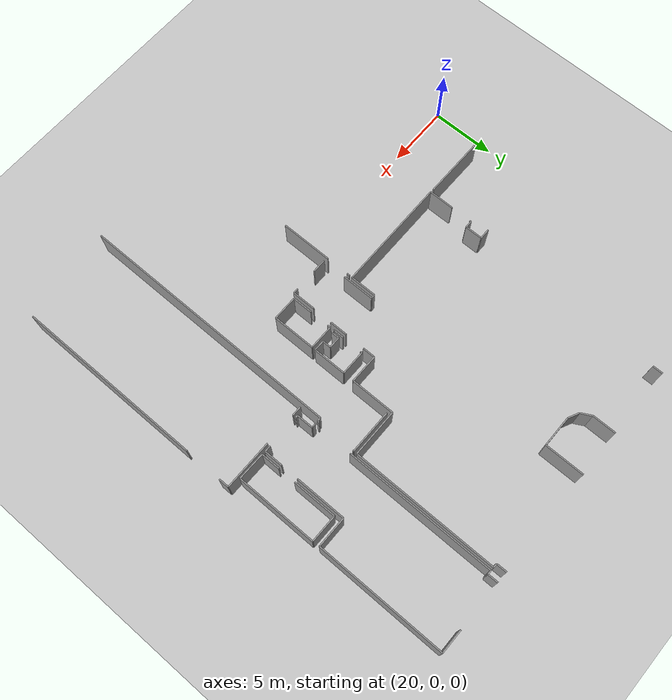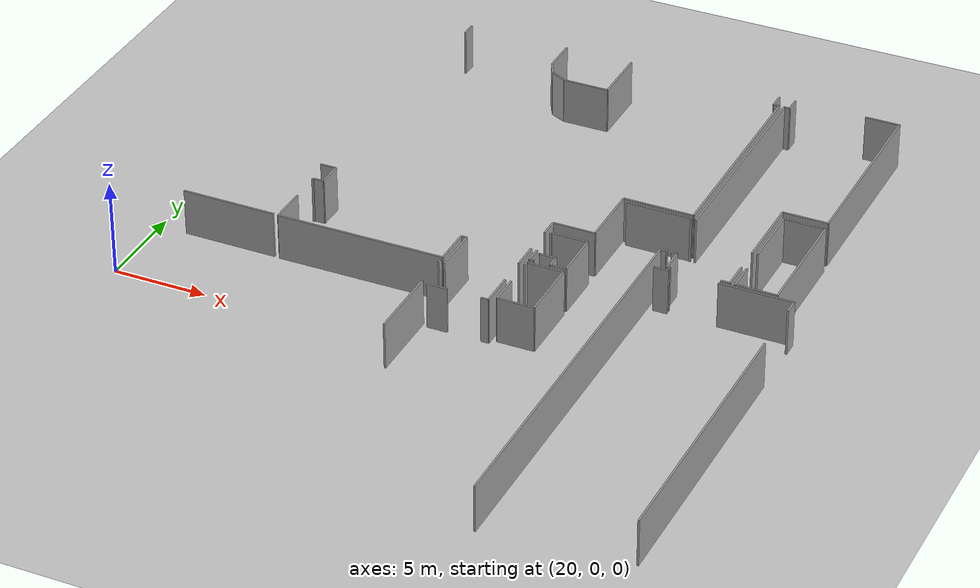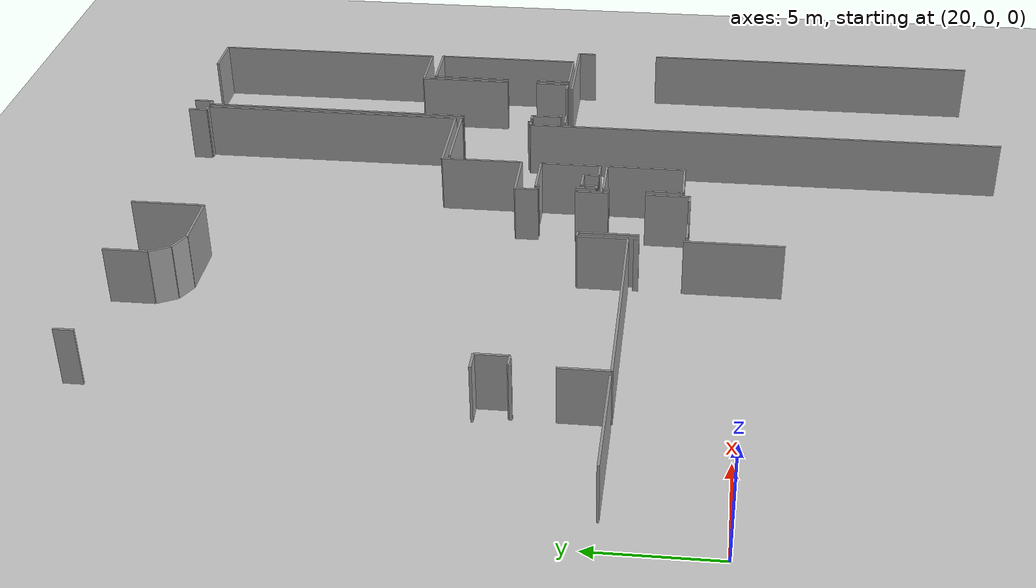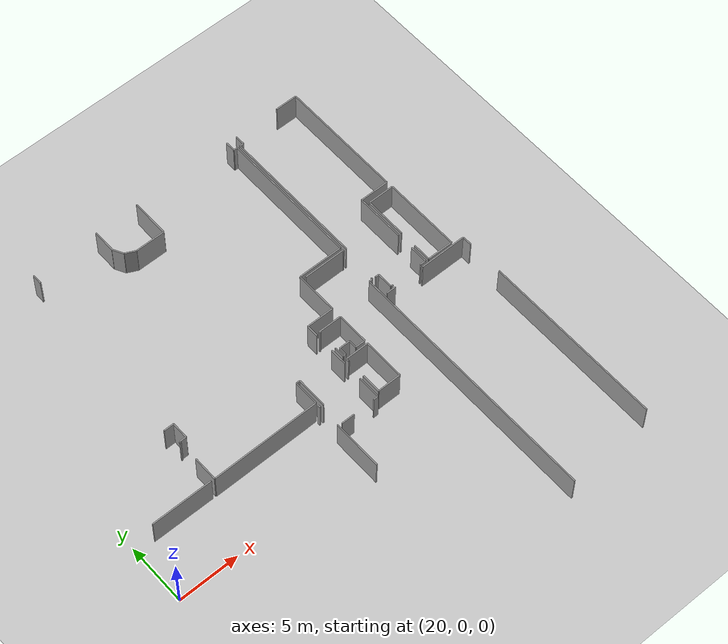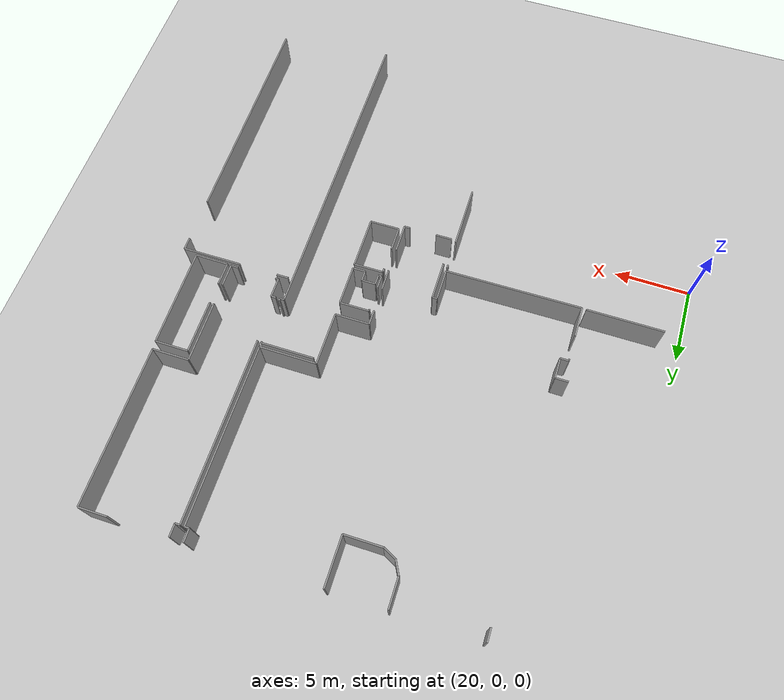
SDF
<sdf version="1.6">
 <world name="default">
  <model name="ground_plane">
   <static>1</static>
   <link name="link">
    <collision name="collision">
     <geometry><plane><normal>0 0 1</normal><size>100 100</size></plane></geometry>
     <surface><friction><ode><mu>100</mu><mu2>50</mu2></ode></friction></surface>
    </collision>
    <visual name="visual">
     <cast_shadows>0</cast_shadows>
     <geometry><plane><normal>0 0 1</normal><size>100 100</size></plane></geometry>
     <material>
      <script><uri>file://media/materials/scripts/gazebo.material</uri><name>Gazebo/Grey</name></script>
     </material>
    </visual>
   </link>
  </model>
  <model name="50045366">
   <static>1</static>
   <link name="Wall_236">
    <collision name="Wall_236_Collision">
     <geometry><box><size>3.45746910366 0.1 2.5</size></box></geometry>
     <pose>1.72873455183 0 1.25 0 0 0</pose>
    </collision>
    <visual name="Wall_236_Visual">
     <pose>1.72873455183 0 1.25 0 0 0</pose>
     <geometry><box><size>3.45746910366 0.1 2.5</size></box></geometry>
     <material>
      <script><uri>file://media/materials/scripts/gazebo.material</uri><name>Gazebo/Grey</name></script>
      <ambient>1 1 1 1</ambient>
     </material>
    </visual>
    <pose>95.8589373944 -12.6361915891 0 0 0 0.0</pose>
   </link>
   <link name="Wall_237">
    <collision name="Wall_237_Collision">
     <geometry><box><size>0.0842107937153 0.1 2.5</size></box></geometry>
     <pose>0.0421053968577 0 1.25 0 0 0</pose>
    </collision>
    <visual name="Wall_237_Visual">
     <pose>0.0421053968577 0 1.25 0 0 0</pose>
     <geometry><box><size>0.0842107937153 0.1 2.5</size></box></geometry>
     <material>
      <script><uri>file://media/materials/scripts/gazebo.material</uri><name>Gazebo/Grey</name></script>
      <ambient>1 1 1 1</ambient>
     </material>
    </visual>
    <pose>99.3164064981 -12.6361915891 0 0 0 -1.57079632679</pose>
   </link>
   <link name="Wall_238">
    <collision name="Wall_238_Collision">
     <geometry><box><size>0.143526692154 0.1 2.5</size></box></geometry>
     <pose>0.0717633460772 0 1.25 0 0 0</pose>
    </collision>
    <visual name="Wall_238_Visual">
     <pose>0.0717633460772 0 1.25 0 0 0</pose>
     <geometry><box><size>0.143526692154 0.1 2.5</size></box></geometry>
     <material>
      <script><uri>file://media/materials/scripts/gazebo.material</uri><name>Gazebo/Grey</name></script>
      <ambient>1 1 1 1</ambient>
     </material>
    </visual>
    <pose>99.3164064981 -15.6850541718 0 0 0 -1.57079632679</pose>
   </link>
   <link name="Wall_239">
    <collision name="Wall_239_Collision">
     <geometry><box><size>0.296325462651 0.1 2.5</size></box></geometry>
     <pose>0.148162731326 0 1.25 0 0 0</pose>
    </collision>
    <visual name="Wall_239_Visual">
     <pose>0.148162731326 0 1.25 0 0 0</pose>
     <geometry><box><size>0.296325462651 0.1 2.5</size></box></geometry>
     <material>
      <script><uri>file://media/materials/scripts/gazebo.material</uri><name>Gazebo/Grey</name></script>
      <ambient>1 1 1 1</ambient>
     </material>
    </visual>
    <pose>99.3164064981 -15.828580864 0 0 0 3.14159265359</pose>
   </link>
   <link name="Wall_240">
    <collision name="Wall_240_Collision">
     <geometry><box><size>20.916792623 0.1 2.5</size></box></geometry>
     <pose>10.4583963115 0 1.25 0 0 0</pose>
    </collision>
    <visual name="Wall_240_Visual">
     <pose>10.4583963115 0 1.25 0 0 0</pose>
     <geometry><box><size>20.916792623 0.1 2.5</size></box></geometry>
     <material>
      <script><uri>file://media/materials/scripts/gazebo.material</uri><name>Gazebo/Grey</name></script>
      <ambient>1 1 1 1</ambient>
     </material>
    </visual>
    <pose>99.0200810354 -15.828580864 0 0 0 -1.57079632679</pose>
   </link>
   <link name="Wall_377">
    <collision name="Wall_377_Collision">
     <geometry><box><size>1.28831083055 0.1 2.5</size></box></geometry>
     <pose>0.644155415275 0 1.25 0 0 0</pose>
    </collision>
    <visual name="Wall_377_Visual">
     <pose>0.644155415275 0 1.25 0 0 0</pose>
     <geometry><box><size>1.28831083055 0.1 2.5</size></box></geometry>
     <material>
      <script><uri>file://media/materials/scripts/gazebo.material</uri><name>Gazebo/Grey</name></script>
      <ambient>1 1 1 1</ambient>
     </material>
    </visual>
    <pose>99.8935616212 -17.1092708082 0 0 0 1.57079632679</pose>
   </link>
   <link name="Wall_378">
    <collision name="Wall_378_Collision">
     <geometry><box><size>0.308264851202 0.1 2.5</size></box></geometry>
     <pose>0.154132425601 0 1.25 0 0 0</pose>
    </collision>
    <visual name="Wall_378_Visual">
     <pose>0.154132425601 0 1.25 0 0 0</pose>
     <geometry><box><size>0.308264851202 0.1 2.5</size></box></geometry>
     <material>
      <script><uri>file://media/materials/scripts/gazebo.material</uri><name>Gazebo/Grey</name></script>
      <ambient>1 1 1 1</ambient>
     </material>
    </visual>
    <pose>99.8935616212 -15.8209599776 0 0 0 3.14159265359</pose>
   </link>
   <link name="Wall_379">
    <collision name="Wall_379_Collision">
     <geometry><box><size>11.8404440436 0.1 2.5</size></box></geometry>
     <pose>5.92022202182 0 1.25 0 0 0</pose>
    </collision>
    <visual name="Wall_379_Visual">
     <pose>5.92022202182 0 1.25 0 0 0</pose>
     <geometry><box><size>11.8404440436 0.1 2.5</size></box></geometry>
     <material>
      <script><uri>file://media/materials/scripts/gazebo.material</uri><name>Gazebo/Grey</name></script>
      <ambient>1 1 1 1</ambient>
     </material>
    </visual>
    <pose>99.58529677 -12.7140516442 0 0 0 1.57079632679</pose>
   </link>
   <link name="Wall_380">
    <collision name="Wall_380_Collision">
     <geometry><box><size>0.308264851202 0.1 2.5</size></box></geometry>
     <pose>0.154132425601 0 1.25 0 0 0</pose>
    </collision>
    <visual name="Wall_380_Visual">
     <pose>0.154132425601 0 1.25 0 0 0</pose>
     <geometry><box><size>0.308264851202 0.1 2.5</size></box></geometry>
     <material>
      <script><uri>file://media/materials/scripts/gazebo.material</uri><name>Gazebo/Grey</name></script>
      <ambient>1 1 1 1</ambient>
     </material>
    </visual>
    <pose>99.58529677 -0.873607600564 0 0 0 0.0</pose>
   </link>
   <link name="Wall_381">
    <collision name="Wall_381_Collision">
     <geometry><box><size>0.808194993078 0.1 2.5</size></box></geometry>
     <pose>0.404097496539 0 1.25 0 0 0</pose>
    </collision>
    <visual name="Wall_381_Visual">
     <pose>0.404097496539 0 1.25 0 0 0</pose>
     <geometry><box><size>0.808194993078 0.1 2.5</size></box></geometry>
     <material>
      <script><uri>file://media/materials/scripts/gazebo.material</uri><name>Gazebo/Grey</name></script>
      <ambient>1 1 1 1</ambient>
     </material>
    </visual>
    <pose>99.8935616212 -0.873607600564 0 0 0 1.57079632679</pose>
   </link>
   <link name="Wall_382">
    <collision name="Wall_382_Collision">
     <geometry><box><size>1.83536345277 0.1 2.5</size></box></geometry>
     <pose>0.917681726385 0 1.25 0 0 0</pose>
    </collision>
    <visual name="Wall_382_Visual">
     <pose>0.917681726385 0 1.25 0 0 0</pose>
     <geometry><box><size>1.83536345277 0.1 2.5</size></box></geometry>
     <material>
      <script><uri>file://media/materials/scripts/gazebo.material</uri><name>Gazebo/Grey</name></script>
      <ambient>1 1 1 1</ambient>
     </material>
    </visual>
    <pose>103.724327139 -0.0654126074863 0 0 0 0.0</pose>
   </link>
   <link name="Wall_383">
    <collision name="Wall_383_Collision">
     <geometry><box><size>10.1787097839 0.1 2.5</size></box></geometry>
     <pose>5.08935489197 0 1.25 0 0 0</pose>
    </collision>
    <visual name="Wall_383_Visual">
     <pose>5.08935489197 0 1.25 0 0 0</pose>
     <geometry><box><size>10.1787097839 0.1 2.5</size></box></geometry>
     <material>
      <script><uri>file://media/materials/scripts/gazebo.material</uri><name>Gazebo/Grey</name></script>
      <ambient>1 1 1 1</ambient>
     </material>
    </visual>
    <pose>105.559690592 -0.0654126074863 0 0 0 -1.57079632679</pose>
   </link>
   <link name="Wall_384">
    <collision name="Wall_384_Collision">
     <geometry><box><size>2.39537158171 0.1 2.5</size></box></geometry>
     <pose>1.19768579086 0 1.25 0 0 0</pose>
    </collision>
    <visual name="Wall_384_Visual">
     <pose>1.19768579086 0 1.25 0 0 0</pose>
     <geometry><box><size>2.39537158171 0.1 2.5</size></box></geometry>
     <material>
      <script><uri>file://media/materials/scripts/gazebo.material</uri><name>Gazebo/Grey</name></script>
      <ambient>1 1 1 1</ambient>
     </material>
    </visual>
    <pose>105.559690592 -10.2441223914 0 0 0 3.14159265359</pose>
   </link>
   <link name="Wall_385">
    <collision name="Wall_385_Collision">
     <geometry><box><size>4.01404783376 0.1 2.5</size></box></geometry>
     <pose>2.00702391688 0 1.25 0 0 0</pose>
    </collision>
    <visual name="Wall_385_Visual">
     <pose>2.00702391688 0 1.25 0 0 0</pose>
     <geometry><box><size>4.01404783376 0.1 2.5</size></box></geometry>
     <material>
      <script><uri>file://media/materials/scripts/gazebo.material</uri><name>Gazebo/Grey</name></script>
      <ambient>1 1 1 1</ambient>
     </material>
    </visual>
    <pose>103.16431901 -10.2441223914 0 0 0 -1.57079632679</pose>
   </link>
   <link name="Wall_386">
    <collision name="Wall_386_Collision">
     <geometry><box><size>1.46981493948 0.1 2.5</size></box></geometry>
     <pose>0.734907469739 0 1.25 0 0 0</pose>
    </collision>
    <visual name="Wall_386_Visual">
     <pose>0.734907469739 0 1.25 0 0 0</pose>
     <geometry><box><size>1.46981493948 0.1 2.5</size></box></geometry>
     <material>
      <script><uri>file://media/materials/scripts/gazebo.material</uri><name>Gazebo/Grey</name></script>
      <ambient>1 1 1 1</ambient>
     </material>
    </visual>
    <pose>103.16431901 -15.636534529 0 0 0 -1.57079632679</pose>
   </link>
   <link name="Wall_387">
    <collision name="Wall_387_Collision">
     <geometry><box><size>0.489133886271 0.1 2.5</size></box></geometry>
     <pose>0.244566943135 0 1.25 0 0 0</pose>
    </collision>
    <visual name="Wall_387_Visual">
     <pose>0.244566943135 0 1.25 0 0 0</pose>
     <geometry><box><size>0.489133886271 0.1 2.5</size></box></geometry>
     <material>
      <script><uri>file://media/materials/scripts/gazebo.material</uri><name>Gazebo/Grey</name></script>
      <ambient>1 1 1 1</ambient>
     </material>
    </visual>
    <pose>103.16431901 -17.1063494684 0 0 0 3.14159265359</pose>
   </link>
   <link name="Wall_388">
    <collision name="Wall_388_Collision">
     <geometry><box><size>0.199561590108 0.1 2.5</size></box></geometry>
     <pose>0.0997807950539 0 1.25 0 0 0</pose>
    </collision>
    <visual name="Wall_388_Visual">
     <pose>0.0997807950539 0 1.25 0 0 0</pose>
     <geometry><box><size>0.199561590108 0.1 2.5</size></box></geometry>
     <material>
      <script><uri>file://media/materials/scripts/gazebo.material</uri><name>Gazebo/Grey</name></script>
      <ambient>1 1 1 1</ambient>
     </material>
    </visual>
    <pose>100.093101828 -17.1063494684 0 0 0 -3.126953343</pose>
   </link>
   <link name="Wall_389">
    <collision name="Wall_389_Collision">
     <geometry><box><size>1.49102640637 0.1 2.5</size></box></geometry>
     <pose>0.745513203186 0 1.25 0 0 0</pose>
    </collision>
    <visual name="Wall_389_Visual">
     <pose>0.745513203186 0 1.25 0 0 0</pose>
     <geometry><box><size>1.49102640637 0.1 2.5</size></box></geometry>
     <material>
      <script><uri>file://media/materials/scripts/gazebo.material</uri><name>Gazebo/Grey</name></script>
      <ambient>1 1 1 1</ambient>
     </material>
    </visual>
    <pose>103.438543903 -17.1318794376 0 0 0 1.57079632679</pose>
   </link>
   <link name="Wall_390">
    <collision name="Wall_390_Collision">
     <geometry><box><size>3.46750327063 0.1 2.5</size></box></geometry>
     <pose>1.73375163532 0 1.25 0 0 0</pose>
    </collision>
    <visual name="Wall_390_Visual">
     <pose>1.73375163532 0 1.25 0 0 0</pose>
     <geometry><box><size>3.46750327063 0.1 2.5</size></box></geometry>
     <material>
      <script><uri>file://media/materials/scripts/gazebo.material</uri><name>Gazebo/Grey</name></script>
      <ambient>1 1 1 1</ambient>
     </material>
    </visual>
    <pose>103.438543903 -14.2497872503 0 0 0 1.57079632679</pose>
   </link>
   <link name="Wall_391">
    <collision name="Wall_391_Collision">
     <geometry><box><size>2.16814215493 0.1 2.5</size></box></geometry>
     <pose>1.08407107747 0 1.25 0 0 0</pose>
    </collision>
    <visual name="Wall_391_Visual">
     <pose>1.08407107747 0 1.25 0 0 0</pose>
     <geometry><box><size>2.16814215493 0.1 2.5</size></box></geometry>
     <material>
      <script><uri>file://media/materials/scripts/gazebo.material</uri><name>Gazebo/Grey</name></script>
      <ambient>1 1 1 1</ambient>
     </material>
    </visual>
    <pose>103.438543903 -10.7822839796 0 0 0 0.0</pose>
   </link>
   <link name="Wall_392">
    <collision name="Wall_392_Collision">
     <geometry><box><size>6.37169602825 0.1 2.5</size></box></geometry>
     <pose>3.18584801412 0 1.25 0 0 0</pose>
    </collision>
    <visual name="Wall_392_Visual">
     <pose>3.18584801412 0 1.25 0 0 0</pose>
     <geometry><box><size>6.37169602825 0.1 2.5</size></box></geometry>
     <material>
      <script><uri>file://media/materials/scripts/gazebo.material</uri><name>Gazebo/Grey</name></script>
      <ambient>1 1 1 1</ambient>
     </material>
    </visual>
    <pose>105.606686058 -10.7822839796 0 0 0 -1.57079632679</pose>
   </link>
   <link name="Wall_393">
    <collision name="Wall_393_Collision">
     <geometry><box><size>2.16825479112 0.1 2.5</size></box></geometry>
     <pose>1.08412739556 0 1.25 0 0 0</pose>
    </collision>
    <visual name="Wall_393_Visual">
     <pose>1.08412739556 0 1.25 0 0 0</pose>
     <geometry><box><size>2.16825479112 0.1 2.5</size></box></geometry>
     <material>
      <script><uri>file://media/materials/scripts/gazebo.material</uri><name>Gazebo/Grey</name></script>
      <ambient>1 1 1 1</ambient>
     </material>
    </visual>
    <pose>105.606686058 -17.1539800079 0 0 0 3.13139968499</pose>
   </link>
   <link name="Wall_397">
    <collision name="Wall_397_Collision">
     <geometry><box><size>0.775806226264 0.1 2.5</size></box></geometry>
     <pose>0.387903113132 0 1.25 0 0 0</pose>
    </collision>
    <visual name="Wall_397_Visual">
     <pose>0.387903113132 0 1.25 0 0 0</pose>
     <geometry><box><size>0.775806226264 0.1 2.5</size></box></geometry>
     <material>
      <script><uri>file://media/materials/scripts/gazebo.material</uri><name>Gazebo/Grey</name></script>
      <ambient>1 1 1 1</ambient>
     </material>
    </visual>
    <pose>99.3260596207 -17.3617761746 0 0 0 0.0</pose>
   </link>
   <link name="Wall_398">
    <collision name="Wall_398_Collision">
     <geometry><box><size>3.86721875754 0.1 2.5</size></box></geometry>
     <pose>1.93360937877 0 1.25 0 0 0</pose>
    </collision>
    <visual name="Wall_398_Visual">
     <pose>1.93360937877 0 1.25 0 0 0</pose>
     <geometry><box><size>3.86721875754 0.1 2.5</size></box></geometry>
     <material>
      <script><uri>file://media/materials/scripts/gazebo.material</uri><name>Gazebo/Grey</name></script>
      <ambient>1 1 1 1</ambient>
     </material>
    </visual>
    <pose>102.665404987 -17.3617761746 0 0 0 0.0</pose>
   </link>
   <link name="Wall_399">
    <collision name="Wall_399_Collision">
     <geometry><box><size>0.802987387433 0.1 2.5</size></box></geometry>
     <pose>0.401493693717 0 1.25 0 0 0</pose>
    </collision>
    <visual name="Wall_399_Visual">
     <pose>0.401493693717 0 1.25 0 0 0</pose>
     <geometry><box><size>0.802987387433 0.1 2.5</size></box></geometry>
     <material>
      <script><uri>file://media/materials/scripts/gazebo.material</uri><name>Gazebo/Grey</name></script>
      <ambient>1 1 1 1</ambient>
     </material>
    </visual>
    <pose>106.532623744 -17.3617761746 0 0 0 -1.57079632679</pose>
   </link>
   <link name="Wall_400">
    <collision name="Wall_400_Collision">
     <geometry><box><size>14.8364684813 0.1 2.5</size></box></geometry>
     <pose>7.41823424064 0 1.25 0 0 0</pose>
    </collision>
    <visual name="Wall_400_Visual">
     <pose>7.41823424064 0 1.25 0 0 0</pose>
     <geometry><box><size>14.8364684813 0.1 2.5</size></box></geometry>
     <material>
      <script><uri>file://media/materials/scripts/gazebo.material</uri><name>Gazebo/Grey</name></script>
      <ambient>1 1 1 1</ambient>
     </material>
    </visual>
    <pose>106.532623744 -21.1078228398 0 0 0 -1.57079632679</pose>
   </link>
   <link name="Wall_416">
    <collision name="Wall_416_Collision">
     <geometry><box><size>2.00683339472 0.1 2.5</size></box></geometry>
     <pose>1.00341669736 0 1.25 0 0 0</pose>
    </collision>
    <visual name="Wall_416_Visual">
     <pose>1.00341669736 0 1.25 0 0 0</pose>
     <geometry><box><size>2.00683339472 0.1 2.5</size></box></geometry>
     <material>
      <script><uri>file://media/materials/scripts/gazebo.material</uri><name>Gazebo/Grey</name></script>
      <ambient>1 1 1 1</ambient>
     </material>
    </visual>
    <pose>80.8515070303 -20.9053612935 0 0 0 1.57079632679</pose>
   </link>
   <link name="Wall_417">
    <collision name="Wall_417_Collision">
     <geometry><box><size>0.12155313663 0.1 2.5</size></box></geometry>
     <pose>0.0607765683149 0 1.25 0 0 0</pose>
    </collision>
    <visual name="Wall_417_Visual">
     <pose>0.0607765683149 0 1.25 0 0 0</pose>
     <geometry><box><size>0.12155313663 0.1 2.5</size></box></geometry>
     <material>
      <script><uri>file://media/materials/scripts/gazebo.material</uri><name>Gazebo/Grey</name></script>
      <ambient>1 1 1 1</ambient>
     </material>
    </visual>
    <pose>80.8515070303 -17.2865834297 0 0 0 1.57079632679</pose>
   </link>
   <link name="Wall_418">
    <collision name="Wall_418_Collision">
     <geometry><box><size>0.552260227864 0.1 2.5</size></box></geometry>
     <pose>0.276130113932 0 1.25 0 0 0</pose>
    </collision>
    <visual name="Wall_418_Visual">
     <pose>0.276130113932 0 1.25 0 0 0</pose>
     <geometry><box><size>0.552260227864 0.1 2.5</size></box></geometry>
     <material>
      <script><uri>file://media/materials/scripts/gazebo.material</uri><name>Gazebo/Grey</name></script>
      <ambient>1 1 1 1</ambient>
     </material>
    </visual>
    <pose>80.8515070303 -17.165030293 0 0 0 0.0</pose>
   </link>
   <link name="Wall_419">
    <collision name="Wall_419_Collision">
     <geometry><box><size>1.34749971422 0.1 2.5</size></box></geometry>
     <pose>0.673749857108 0 1.25 0 0 0</pose>
    </collision>
    <visual name="Wall_419_Visual">
     <pose>0.673749857108 0 1.25 0 0 0</pose>
     <geometry><box><size>1.34749971422 0.1 2.5</size></box></geometry>
     <material>
      <script><uri>file://media/materials/scripts/gazebo.material</uri><name>Gazebo/Grey</name></script>
      <ambient>1 1 1 1</ambient>
     </material>
    </visual>
    <pose>81.4037672581 -17.165030293 0 0 0 1.57079632679</pose>
   </link>
   <link name="Wall_420">
    <collision name="Wall_420_Collision">
     <geometry><box><size>0.839440626945 0.1 2.5</size></box></geometry>
     <pose>0.419720313472 0 1.25 0 0 0</pose>
    </collision>
    <visual name="Wall_420_Visual">
     <pose>0.419720313472 0 1.25 0 0 0</pose>
     <geometry><box><size>0.839440626945 0.1 2.5</size></box></geometry>
     <material>
      <script><uri>file://media/materials/scripts/gazebo.material</uri><name>Gazebo/Grey</name></script>
      <ambient>1 1 1 1</ambient>
     </material>
    </visual>
    <pose>81.4037672581 -15.8175305788 0 0 0 3.14159265359</pose>
   </link>
   <link name="Wall_428">
    <collision name="Wall_428_Collision">
     <geometry><box><size>0.816450953246 0.1 2.5</size></box></geometry>
     <pose>0.408225476623 0 1.25 0 0 0</pose>
    </collision>
    <visual name="Wall_428_Visual">
     <pose>0.408225476623 0 1.25 0 0 0</pose>
     <geometry><box><size>0.816450953246 0.1 2.5</size></box></geometry>
     <material>
      <script><uri>file://media/materials/scripts/gazebo.material</uri><name>Gazebo/Grey</name></script>
      <ambient>1 1 1 1</ambient>
     </material>
    </visual>
    <pose>81.4266299171 -0.870813275584 0 0 0 1.57079632679</pose>
   </link>
   <link name="Wall_429">
    <collision name="Wall_429_Collision">
     <geometry><box><size>1.86699013095 0.1 2.5</size></box></geometry>
     <pose>0.933495065476 0 1.25 0 0 0</pose>
    </collision>
    <visual name="Wall_429_Visual">
     <pose>0.933495065476 0 1.25 0 0 0</pose>
     <geometry><box><size>1.86699013095 0.1 2.5</size></box></geometry>
     <material>
      <script><uri>file://media/materials/scripts/gazebo.material</uri><name>Gazebo/Grey</name></script>
      <ambient>1 1 1 1</ambient>
     </material>
    </visual>
    <pose>86.9667602342 -0.0543623223381 0 0 0 -1.57079632679</pose>
   </link>
   <link name="Wall_430">
    <collision name="Wall_430_Collision">
     <geometry><box><size>0.9230346027 0.1 2.5</size></box></geometry>
     <pose>0.46151730135 0 1.25 0 0 0</pose>
    </collision>
    <visual name="Wall_430_Visual">
     <pose>0.46151730135 0 1.25 0 0 0</pose>
     <geometry><box><size>0.9230346027 0.1 2.5</size></box></geometry>
     <material>
      <script><uri>file://media/materials/scripts/gazebo.material</uri><name>Gazebo/Grey</name></script>
      <ambient>1 1 1 1</ambient>
     </material>
    </visual>
    <pose>86.9667602342 -1.92135245329 0 0 0 -1.07815973448</pose>
   </link>
   <link name="Wall_431">
    <collision name="Wall_431_Collision">
     <geometry><box><size>0.906197132819 0.1 2.5</size></box></geometry>
     <pose>0.45309856641 0 1.25 0 0 0</pose>
    </collision>
    <visual name="Wall_431_Visual">
     <pose>0.45309856641 0 1.25 0 0 0</pose>
     <geometry><box><size>0.906197132819 0.1 2.5</size></box></geometry>
     <material>
      <script><uri>file://media/materials/scripts/gazebo.material</uri><name>Gazebo/Grey</name></script>
      <ambient>1 1 1 1</ambient>
     </material>
    </visual>
    <pose>87.403310005 -2.73462803724 0 0 0 -0.456501739285</pose>
   </link>
   <link name="Wall_432">
    <collision name="Wall_432_Collision">
     <geometry><box><size>2.45354434721 0.1 2.5</size></box></geometry>
     <pose>1.2267721736 0 1.25 0 0 0</pose>
    </collision>
    <visual name="Wall_432_Visual">
     <pose>1.2267721736 0 1.25 0 0 0</pose>
     <geometry><box><size>2.45354434721 0.1 2.5</size></box></geometry>
     <material>
      <script><uri>file://media/materials/scripts/gazebo.material</uri><name>Gazebo/Grey</name></script>
      <ambient>1 1 1 1</ambient>
     </material>
    </visual>
    <pose>88.2167126037 -3.13408949461 0 0 0 0.0</pose>
   </link>
   <link name="Wall_433">
    <collision name="Wall_433_Collision">
     <geometry><box><size>3.0994144619 0.1 2.5</size></box></geometry>
     <pose>1.54970723095 0 1.25 0 0 0</pose>
    </collision>
    <visual name="Wall_433_Visual">
     <pose>1.54970723095 0 1.25 0 0 0</pose>
     <geometry><box><size>3.0994144619 0.1 2.5</size></box></geometry>
     <material>
      <script><uri>file://media/materials/scripts/gazebo.material</uri><name>Gazebo/Grey</name></script>
      <ambient>1 1 1 1</ambient>
     </material>
    </visual>
    <pose>90.6702569509 -3.13408949461 0 0 0 1.57079632679</pose>
   </link>
   <link name="Wall_434">
    <collision name="Wall_434_Collision">
     <geometry><box><size>0.826358105448 0.1 2.5</size></box></geometry>
     <pose>0.413179052724 0 1.25 0 0 0</pose>
    </collision>
    <visual name="Wall_434_Visual">
     <pose>0.413179052724 0 1.25 0 0 0</pose>
     <geometry><box><size>0.826358105448 0.1 2.5</size></box></geometry>
     <material>
      <script><uri>file://media/materials/scripts/gazebo.material</uri><name>Gazebo/Grey</name></script>
      <ambient>1 1 1 1</ambient>
     </material>
    </visual>
    <pose>99.0081416469 -0.0346750327063 0 0 0 -1.57079632679</pose>
   </link>
   <link name="Wall_435">
    <collision name="Wall_435_Collision">
     <geometry><box><size>0.3123293239 0.1 2.5</size></box></geometry>
     <pose>0.15616466195 0 1.25 0 0 0</pose>
    </collision>
    <visual name="Wall_435_Visual">
     <pose>0.15616466195 0 1.25 0 0 0</pose>
     <geometry><box><size>0.3123293239 0.1 2.5</size></box></geometry>
     <material>
      <script><uri>file://media/materials/scripts/gazebo.material</uri><name>Gazebo/Grey</name></script>
      <ambient>1 1 1 1</ambient>
     </material>
    </visual>
    <pose>99.0081416469 -0.861033138154 0 0 0 0.0</pose>
   </link>
   <link name="Wall_436">
    <collision name="Wall_436_Collision">
     <geometry><box><size>11.4995363961 0.1 2.5</size></box></geometry>
     <pose>5.74976819804 0 1.25 0 0 0</pose>
    </collision>
    <visual name="Wall_436_Visual">
     <pose>5.74976819804 0 1.25 0 0 0</pose>
     <geometry><box><size>11.4995363961 0.1 2.5</size></box></geometry>
     <material>
      <script><uri>file://media/materials/scripts/gazebo.material</uri><name>Gazebo/Grey</name></script>
      <ambient>1 1 1 1</ambient>
     </material>
    </visual>
    <pose>99.3204709708 -0.861033138154 0 0 0 -1.57079632679</pose>
   </link>
   <link name="Wall_437">
    <collision name="Wall_437_Collision">
     <geometry><box><size>3.7371556312 0.1 2.5</size></box></geometry>
     <pose>1.8685778156 0 1.25 0 0 0</pose>
    </collision>
    <visual name="Wall_437_Visual">
     <pose>1.8685778156 0 1.25 0 0 0</pose>
     <geometry><box><size>3.7371556312 0.1 2.5</size></box></geometry>
     <material>
      <script><uri>file://media/materials/scripts/gazebo.material</uri><name>Gazebo/Grey</name></script>
      <ambient>1 1 1 1</ambient>
     </material>
    </visual>
    <pose>99.3204709708 -12.3605695342 0 0 0 3.14159265359</pose>
   </link>
   <link name="Wall_438">
    <collision name="Wall_438_Collision">
     <geometry><box><size>3.48223698416 0.1 2.5</size></box></geometry>
     <pose>1.74111849208 0 1.25 0 0 0</pose>
    </collision>
    <visual name="Wall_438_Visual">
     <pose>1.74111849208 0 1.25 0 0 0</pose>
     <geometry><box><size>3.48223698416 0.1 2.5</size></box></geometry>
     <material>
      <script><uri>file://media/materials/scripts/gazebo.material</uri><name>Gazebo/Grey</name></script>
      <ambient>1 1 1 1</ambient>
     </material>
    </visual>
    <pose>95.5833153396 -12.3605695342 0 0 0 -1.57079632679</pose>
   </link>
   <link name="Wall_439">
    <collision name="Wall_439_Collision">
     <geometry><box><size>2.24689131346 0.1 2.5</size></box></geometry>
     <pose>1.12344565673 0 1.25 0 0 0</pose>
    </collision>
    <visual name="Wall_439_Visual">
     <pose>1.12344565673 0 1.25 0 0 0</pose>
     <geometry><box><size>2.24689131346 0.1 2.5</size></box></geometry>
     <material>
      <script><uri>file://media/materials/scripts/gazebo.material</uri><name>Gazebo/Grey</name></script>
      <ambient>1 1 1 1</ambient>
     </material>
    </visual>
    <pose>95.5833153396 -15.8428065184 0 0 0 3.14159265359</pose>
   </link>
   <link name="Wall_440">
    <collision name="Wall_440_Collision">
     <geometry><box><size>0.980300008891 0.1 2.5</size></box></geometry>
     <pose>0.490150004446 0 1.25 0 0 0</pose>
    </collision>
    <visual name="Wall_440_Visual">
     <pose>0.490150004446 0 1.25 0 0 0</pose>
     <geometry><box><size>0.980300008891 0.1 2.5</size></box></geometry>
     <material>
      <script><uri>file://media/materials/scripts/gazebo.material</uri><name>Gazebo/Grey</name></script>
      <ambient>1 1 1 1</ambient>
     </material>
    </visual>
    <pose>93.3364240261 -15.8428065184 0 0 0 -1.57079632679</pose>
   </link>
   <link name="Wall_441">
    <collision name="Wall_441_Collision">
     <geometry><box><size>1.40999098195 0.1 2.5</size></box></geometry>
     <pose>0.704995490976 0 1.25 0 0 0</pose>
    </collision>
    <visual name="Wall_441_Visual">
     <pose>0.704995490976 0 1.25 0 0 0</pose>
     <geometry><box><size>1.40999098195 0.1 2.5</size></box></geometry>
     <material>
      <script><uri>file://media/materials/scripts/gazebo.material</uri><name>Gazebo/Grey</name></script>
      <ambient>1 1 1 1</ambient>
     </material>
    </visual>
    <pose>93.3364240261 -18.3917389592 0 0 0 -1.57079632679</pose>
   </link>
   <link name="Wall_442">
    <collision name="Wall_442_Collision">
     <geometry><box><size>1.86635505709 0.1 2.5</size></box></geometry>
     <pose>0.933177528547 0 1.25 0 0 0</pose>
    </collision>
    <visual name="Wall_442_Visual">
     <pose>0.933177528547 0 1.25 0 0 0</pose>
     <geometry><box><size>1.86635505709 0.1 2.5</size></box></geometry>
     <material>
      <script><uri>file://media/materials/scripts/gazebo.material</uri><name>Gazebo/Grey</name></script>
      <ambient>1 1 1 1</ambient>
     </material>
    </visual>
    <pose>93.3364240261 -21.3692192402 0 0 0 -1.57079632679</pose>
   </link>
   <link name="Wall_443">
    <collision name="Wall_443_Collision">
     <geometry><box><size>0.392094600602 0.1 2.5</size></box></geometry>
     <pose>0.196047300301 0 1.25 0 0 0</pose>
    </collision>
    <visual name="Wall_443_Visual">
     <pose>0.196047300301 0 1.25 0 0 0</pose>
     <geometry><box><size>0.392094600602 0.1 2.5</size></box></geometry>
     <material>
      <script><uri>file://media/materials/scripts/gazebo.material</uri><name>Gazebo/Grey</name></script>
      <ambient>1 1 1 1</ambient>
     </material>
    </visual>
    <pose>93.3364240261 -23.2355742973 0 0 0 3.14159265359</pose>
   </link>
   <link name="Wall_444">
    <collision name="Wall_444_Collision">
     <geometry><box><size>1.08280092975 0.1 2.5</size></box></geometry>
     <pose>0.541400464874 0 1.25 0 0 0</pose>
    </collision>
    <visual name="Wall_444_Visual">
     <pose>0.541400464874 0 1.25 0 0 0</pose>
     <geometry><box><size>1.08280092975 0.1 2.5</size></box></geometry>
     <material>
      <script><uri>file://media/materials/scripts/gazebo.material</uri><name>Gazebo/Grey</name></script>
      <ambient>1 1 1 1</ambient>
     </material>
    </visual>
    <pose>91.1726003734 -23.2355742973 0 0 0 3.14159265359</pose>
   </link>
   <link name="Wall_446">
    <collision name="Wall_446_Collision">
     <geometry><box><size>2.51146308316 0.1 2.5</size></box></geometry>
     <pose>1.25573154158 0 1.25 0 0 0</pose>
    </collision>
    <visual name="Wall_446_Visual">
     <pose>1.25573154158 0 1.25 0 0 0</pose>
     <geometry><box><size>2.51146308316 0.1 2.5</size></box></geometry>
     <material>
      <script><uri>file://media/materials/scripts/gazebo.material</uri><name>Gazebo/Grey</name></script>
      <ambient>1 1 1 1</ambient>
     </material>
    </visual>
    <pose>90.0897994437 -21.319810494 0 0 0 1.57079632679</pose>
   </link>
   <link name="Wall_447">
    <collision name="Wall_447_Collision">
     <geometry><box><size>0.302168142155 0.1 2.5</size></box></geometry>
     <pose>0.151084071077 0 1.25 0 0 0</pose>
    </collision>
    <visual name="Wall_447_Visual">
     <pose>0.151084071077 0 1.25 0 0 0</pose>
     <geometry><box><size>0.302168142155 0.1 2.5</size></box></geometry>
     <material>
      <script><uri>file://media/materials/scripts/gazebo.material</uri><name>Gazebo/Grey</name></script>
      <ambient>1 1 1 1</ambient>
     </material>
    </visual>
    <pose>90.0897994437 -18.8083474108 0 0 0 3.14159265359</pose>
   </link>
   <link name="Wall_448">
    <collision name="Wall_448_Collision">
     <geometry><box><size>2.06233885001 0.1 2.5</size></box></geometry>
     <pose>1.031169425 0 1.25 0 0 0</pose>
    </collision>
    <visual name="Wall_448_Visual">
     <pose>1.031169425 0 1.25 0 0 0</pose>
     <geometry><box><size>2.06233885001 0.1 2.5</size></box></geometry>
     <material>
      <script><uri>file://media/materials/scripts/gazebo.material</uri><name>Gazebo/Grey</name></script>
      <ambient>1 1 1 1</ambient>
     </material>
    </visual>
    <pose>89.7876313015 -18.8083474108 0 0 0 -1.57079632679</pose>
   </link>
   <link name="Wall_449">
    <collision name="Wall_449_Collision">
     <geometry><box><size>8.93619154613 0.1 2.5</size></box></geometry>
     <pose>4.46809577307 0 1.25 0 0 0</pose>
    </collision>
    <visual name="Wall_449_Visual">
     <pose>4.46809577307 0 1.25 0 0 0</pose>
     <geometry><box><size>8.93619154613 0.1 2.5</size></box></geometry>
     <material>
      <script><uri>file://media/materials/scripts/gazebo.material</uri><name>Gazebo/Grey</name></script>
      <ambient>1 1 1 1</ambient>
     </material>
    </visual>
    <pose>89.7876313015 -20.8706862608 0 0 0 -3.13771235184</pose>
   </link>
   <link name="Wall_455">
    <collision name="Wall_455_Collision">
     <geometry><box><size>5.01228582253 0.1 2.5</size></box></geometry>
     <pose>2.50614291126 0 1.25 0 0 0</pose>
    </collision>
    <visual name="Wall_455_Visual">
     <pose>2.50614291126 0 1.25 0 0 0</pose>
     <geometry><box><size>5.01228582253 0.1 2.5</size></box></geometry>
     <material>
      <script><uri>file://media/materials/scripts/gazebo.material</uri><name>Gazebo/Grey</name></script>
      <ambient>1 1 1 1</ambient>
     </material>
    </visual>
    <pose>80.5788063152 -20.876147896 0 0 0 3.13819699486</pose>
   </link>
   <link name="Wall_456">
    <collision name="Wall_456_Collision">
     <geometry><box><size>0.856841650684 0.1 2.5</size></box></geometry>
     <pose>0.428420825342 0 1.25 0 0 0</pose>
    </collision>
    <visual name="Wall_456_Visual">
     <pose>0.428420825342 0 1.25 0 0 0</pose>
     <geometry><box><size>0.856841650684 0.1 2.5</size></box></geometry>
     <material>
      <script><uri>file://media/materials/scripts/gazebo.material</uri><name>Gazebo/Grey</name></script>
      <ambient>1 1 1 1</ambient>
     </material>
    </visual>
    <pose>93.641513508 -19.2631873087 0 0 0 1.57079632679</pose>
   </link>
   <link name="Wall_457">
    <collision name="Wall_457_Collision">
     <geometry><box><size>0.132603421778 0.1 2.5</size></box></geometry>
     <pose>0.066301710889 0 1.25 0 0 0</pose>
    </collision>
    <visual name="Wall_457_Visual">
     <pose>0.066301710889 0 1.25 0 0 0</pose>
     <geometry><box><size>0.132603421778 0.1 2.5</size></box></geometry>
     <material>
      <script><uri>file://media/materials/scripts/gazebo.material</uri><name>Gazebo/Grey</name></script>
      <ambient>1 1 1 1</ambient>
     </material>
    </visual>
    <pose>93.641513508 -16.8313624875 0 0 0 1.57079632679</pose>
   </link>
   <link name="Wall_458">
    <collision name="Wall_458_Collision">
     <geometry><box><size>1.9388804918 0.1 2.5</size></box></geometry>
     <pose>0.969440245901 0 1.25 0 0 0</pose>
    </collision>
    <visual name="Wall_458_Visual">
     <pose>0.969440245901 0 1.25 0 0 0</pose>
     <geometry><box><size>1.9388804918 0.1 2.5</size></box></geometry>
     <material>
      <script><uri>file://media/materials/scripts/gazebo.material</uri><name>Gazebo/Grey</name></script>
      <ambient>1 1 1 1</ambient>
     </material>
    </visual>
    <pose>93.641513508 -16.6987590657 0 0 0 0.0</pose>
   </link>
   <link name="Wall_459">
    <collision name="Wall_459_Collision">
     <geometry><box><size>2.58513165081 0.1 2.5</size></box></geometry>
     <pose>1.29256582541 0 1.25 0 0 0</pose>
    </collision>
    <visual name="Wall_459_Visual">
     <pose>1.29256582541 0 1.25 0 0 0</pose>
     <geometry><box><size>2.58513165081 0.1 2.5</size></box></geometry>
     <material>
      <script><uri>file://media/materials/scripts/gazebo.material</uri><name>Gazebo/Grey</name></script>
      <ambient>1 1 1 1</ambient>
     </material>
    </visual>
    <pose>95.5803939998 -16.6987590657 0 0 0 -1.57079632679</pose>
   </link>
   <link name="Wall_460">
    <collision name="Wall_460_Collision">
     <geometry><box><size>0.823817810011 0.1 2.5</size></box></geometry>
     <pose>0.411908905006 0 1.25 0 0 0</pose>
    </collision>
    <visual name="Wall_460_Visual">
     <pose>0.411908905006 0 1.25 0 0 0</pose>
     <geometry><box><size>0.823817810011 0.1 2.5</size></box></geometry>
     <material>
      <script><uri>file://media/materials/scripts/gazebo.material</uri><name>Gazebo/Grey</name></script>
      <ambient>1 1 1 1</ambient>
     </material>
    </visual>
    <pose>95.5803939998 -19.2838907165 0 0 0 3.14159265359</pose>
   </link>
   <link name="Wall_461">
    <collision name="Wall_461_Collision">
     <geometry><box><size>0.659714724822 0.1 2.5</size></box></geometry>
     <pose>0.329857362411 0 1.25 0 0 0</pose>
    </collision>
    <visual name="Wall_461_Visual">
     <pose>0.329857362411 0 1.25 0 0 0</pose>
     <geometry><box><size>0.659714724822 0.1 2.5</size></box></geometry>
     <material>
      <script><uri>file://media/materials/scripts/gazebo.material</uri><name>Gazebo/Grey</name></script>
      <ambient>1 1 1 1</ambient>
     </material>
    </visual>
    <pose>94.7565761898 -19.2838907165 0 0 0 1.57079632679</pose>
   </link>
   <link name="Wall_462">
    <collision name="Wall_462_Collision">
     <geometry><box><size>0.901931894679 0.1 2.5</size></box></geometry>
     <pose>0.45096594734 0 1.25 0 0 0</pose>
    </collision>
    <visual name="Wall_462_Visual">
     <pose>0.45096594734 0 1.25 0 0 0</pose>
     <geometry><box><size>0.901931894679 0.1 2.5</size></box></geometry>
     <material>
      <script><uri>file://media/materials/scripts/gazebo.material</uri><name>Gazebo/Grey</name></script>
      <ambient>1 1 1 1</ambient>
     </material>
    </visual>
    <pose>94.7565761898 -18.6241759917 0 0 0 3.14159265359</pose>
   </link>
   <link name="Wall_463">
    <collision name="Wall_463_Collision">
     <geometry><box><size>0.634692814774 0.1 2.5</size></box></geometry>
     <pose>0.317346407387 0 1.25 0 0 0</pose>
    </collision>
    <visual name="Wall_463_Visual">
     <pose>0.317346407387 0 1.25 0 0 0</pose>
     <geometry><box><size>0.634692814774 0.1 2.5</size></box></geometry>
     <material>
      <script><uri>file://media/materials/scripts/gazebo.material</uri><name>Gazebo/Grey</name></script>
      <ambient>1 1 1 1</ambient>
     </material>
    </visual>
    <pose>93.8546442951 -18.6241759917 0 0 0 -1.57079632679</pose>
   </link>
   <link name="Wall_464">
    <collision name="Wall_464_Collision">
     <geometry><box><size>0.213174533835 0.1 2.5</size></box></geometry>
     <pose>0.106587266918 0 1.25 0 0 0</pose>
    </collision>
    <visual name="Wall_464_Visual">
     <pose>0.106587266918 0 1.25 0 0 0</pose>
     <geometry><box><size>0.213174533835 0.1 2.5</size></box></geometry>
     <material>
      <script><uri>file://media/materials/scripts/gazebo.material</uri><name>Gazebo/Grey</name></script>
      <ambient>1 1 1 1</ambient>
     </material>
    </visual>
    <pose>93.8546442951 -19.2588688064 0 0 0 -3.12133320892</pose>
   </link>
   <link name="Wall_465">
    <collision name="Wall_465_Collision">
     <geometry><box><size>1.57942868756 0.1 2.5</size></box></geometry>
     <pose>0.789714343778 0 1.25 0 0 0</pose>
    </collision>
    <visual name="Wall_465_Visual">
     <pose>0.789714343778 0 1.25 0 0 0</pose>
     <geometry><box><size>1.57942868756 0.1 2.5</size></box></geometry>
     <material>
      <script><uri>file://media/materials/scripts/gazebo.material</uri><name>Gazebo/Grey</name></script>
      <ambient>1 1 1 1</ambient>
     </material>
    </visual>
    <pose>93.6524367784 -22.9414080858 0 0 0 1.57079632679</pose>
   </link>
   <link name="Wall_466">
    <collision name="Wall_466_Collision">
     <geometry><box><size>0.250600144797 0.1 2.5</size></box></geometry>
     <pose>0.125300072398 0 1.25 0 0 0</pose>
    </collision>
    <visual name="Wall_466_Visual">
     <pose>0.125300072398 0 1.25 0 0 0</pose>
     <geometry><box><size>0.250600144797 0.1 2.5</size></box></geometry>
     <material>
      <script><uri>file://media/materials/scripts/gazebo.material</uri><name>Gazebo/Grey</name></script>
      <ambient>1 1 1 1</ambient>
     </material>
    </visual>
    <pose>93.6524367784 -19.8267518512 0 0 0 1.57079632679</pose>
   </link>
   <link name="Wall_467">
    <collision name="Wall_467_Collision">
     <geometry><box><size>1.93087856118 0.1 2.5</size></box></geometry>
     <pose>0.965439280588 0 1.25 0 0 0</pose>
    </collision>
    <visual name="Wall_467_Visual">
     <pose>0.965439280588 0 1.25 0 0 0</pose>
     <geometry><box><size>1.93087856118 0.1 2.5</size></box></geometry>
     <material>
      <script><uri>file://media/materials/scripts/gazebo.material</uri><name>Gazebo/Grey</name></script>
      <ambient>1 1 1 1</ambient>
     </material>
    </visual>
    <pose>93.6524367784 -19.5761517064 0 0 0 0.0</pose>
   </link>
   <link name="Wall_468">
    <collision name="Wall_468_Collision">
     <geometry><box><size>3.35738146346 0.1 2.5</size></box></geometry>
     <pose>1.67869073173 0 1.25 0 0 0</pose>
    </collision>
    <visual name="Wall_468_Visual">
     <pose>1.67869073173 0 1.25 0 0 0</pose>
     <geometry><box><size>3.35738146346 0.1 2.5</size></box></geometry>
     <material>
      <script><uri>file://media/materials/scripts/gazebo.material</uri><name>Gazebo/Grey</name></script>
      <ambient>1 1 1 1</ambient>
     </material>
    </visual>
    <pose>95.5833153396 -19.5761517064 0 0 0 -1.57079632679</pose>
   </link>
   <link name="Wall_469">
    <collision name="Wall_469_Collision">
     <geometry><box><size>1.93089461968 0.1 2.5</size></box></geometry>
     <pose>0.96544730984 0 1.25 0 0 0</pose>
    </collision>
    <visual name="Wall_469_Visual">
     <pose>0.96544730984 0 1.25 0 0 0</pose>
     <geometry><box><size>1.93089461968 0.1 2.5</size></box></geometry>
     <material>
      <script><uri>file://media/materials/scripts/gazebo.material</uri><name>Gazebo/Grey</name></script>
      <ambient>1 1 1 1</ambient>
     </material>
    </visual>
    <pose>95.5833153396 -22.9335331699 0 0 0 -3.13751426547</pose>
   </link>
   <link name="Wall_477">
    <collision name="Wall_477_Collision">
     <geometry><box><size>0.218973466614 0.1 2.5</size></box></geometry>
     <pose>0.109486733307 0 1.25 0 0 0</pose>
    </collision>
    <visual name="Wall_477_Visual">
     <pose>0.109486733307 0 1.25 0 0 0</pose>
     <geometry><box><size>0.218973466614 0.1 2.5</size></box></geometry>
     <material>
      <script><uri>file://media/materials/scripts/gazebo.material</uri><name>Gazebo/Grey</name></script>
      <ambient>1 1 1 1</ambient>
     </material>
    </visual>
    <pose>89.7896635379 -21.1085849284 0 0 0 -1.57079632679</pose>
   </link>
   <link name="Wall_478">
    <collision name="Wall_478_Collision">
     <geometry><box><size>4.07209358448 0.1 2.5</size></box></geometry>
     <pose>2.03604679224 0 1.25 0 0 0</pose>
    </collision>
    <visual name="Wall_478_Visual">
     <pose>2.03604679224 0 1.25 0 0 0</pose>
     <geometry><box><size>4.07209358448 0.1 2.5</size></box></geometry>
     <material>
      <script><uri>file://media/materials/scripts/gazebo.material</uri><name>Gazebo/Grey</name></script>
      <ambient>1 1 1 1</ambient>
     </material>
    </visual>
    <pose>89.7896635379 -23.1076704221 0 0 0 -1.57079632679</pose>
   </link>
   <pose>-54.1 25.3531975969 0 0 0 0</pose>
  </model>
 </world>
</sdf>
